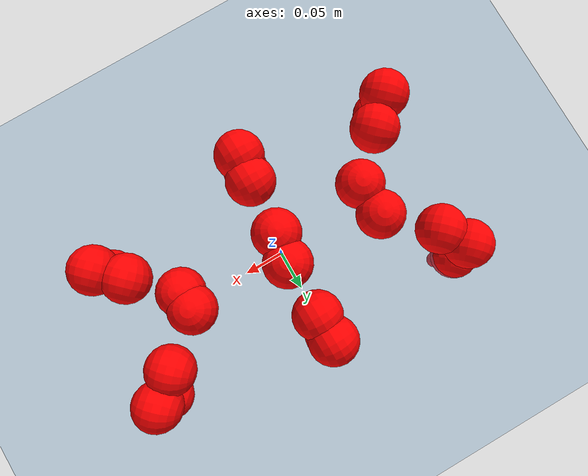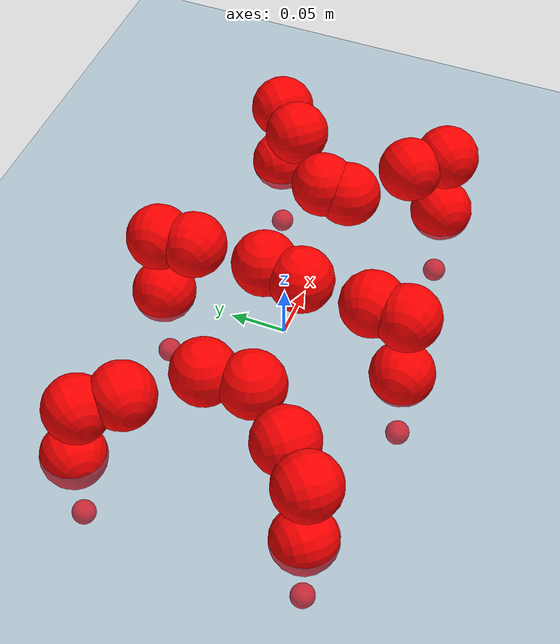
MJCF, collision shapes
<mujoco model="Golem">
  <compiler angle="radian" assetdir="assets" balanceinertia="true" inertiafromgeom="false"/>

  <option timestep="0.005" density="1.2" viscosity="2e-05"/>

  <size nkey="1"/>

  <visual>
    <quality shadowsize="8192"/>
    <map shadowclip="0.5"/>
  </visual>

  <default>
    <default class="/">
      <joint armature="0.01" damping="0.01" frictionloss="0.01"/>
      <geom contype="0" conaffinity="0" group="1" solref="-1000 -80"/>
      <site size="0.01 0.005 0.005" group="5"/>
      <general forcelimited="true" biastype="affine" gainprm="25" biasprm="0 -25 -0.5"/>
      <default class="visual">
        <geom type="mesh" group="2"/>
      </default>
      <default class="collision">
        <geom group="3"/>
      </default>
      <default class="foot">
        <geom size="0.01 0 0" condim="6" group="4" priority="1" solimp="0.015 1 0.01"/>
      </default>
      <default class="reward_collision_sphere">
        <geom group="5" rgba="1 0 0 1"/>
      </default>
    </default>
  </default>

  <asset>
    <texture type="skybox" colorspace="auto" name="//unnamed_texture_0" builtin="gradient" rgb1="0.95 0.95 0.95" rgb2="0.95 0.95 0.95" width="100" height="600"/>
    <texture type="2d" colorspace="auto" name="texplane" builtin="checker" rgb1="0.345 0.575 0.748" rgb2="0.345 0.575 0.748" markrgb="1 1 1" width="512" height="512"/>
    <material name="MatPlane" class="/" texture="texplane" texuniform="true" texrepeat="2 2" specular="0.9"/>
    <mesh name="body" class="/" file="body.stl" scale="0.001 0.001 0.001"/>
    <mesh name="coxa" class="/" file="coxa.stl" scale="0.001 0.001 0.001"/>
    <mesh name="femur" class="/" file="femur.stl" scale="0.001 0.001 0.001"/>
    <mesh name="tibia" class="/" file="tibia.stl" scale="0.001 0.001 0.001"/>
    <mesh name="tarsus" class="/" file="tarsus.stl" scale="0.001 0.001 0.001"/>
  </asset>

  <worldbody>
    <geom name="floor" class="/" size="100 100 0.125" type="plane" group="0" material="MatPlane"/>
    <light name="toplight_shadow" class="/" pos="0 0 5" dir="0.0990148 0.0990148 -0.990148" type="directional" ambient="0.04 0.04 0.04" diffuse="0.55 0.55 0.55" specular="0.12 0.12 0.12"/>
    <light name="toplight_fill" class="/" pos="0 0 5" dir="0.0990148 0.0990148 -0.990148" type="directional" castshadow="false" ambient="0.04 0.04 0.04" diffuse="0.3 0.3 0.3" specular="0.08 0.08 0.08"/>
    <body name="trunk" pos="-0.000832035 0.000814879 0.00242659" quat="0.999996 -0.00279699 -1.72225e-05 0.000371411">
      <inertial pos="0.00259358 -0.00135908 -0.00397522" quat="0.999999 0.00110419 -0.000581209 0.000194224" mass="1.35005" diaginertia="0.00267206 5.66952e-05 0.014335"/>
      <joint name="//unnamed_joint_0" type="free"/>
      <geom name="//unnamed_geom_1" class="/" pos="0 0 0.0682813" quat="1 0 0 0" type="mesh" rgba="0.9 0.9 0.9 1" mesh="body"/>
      <site name="imu" class="/" pos="0.0749864 0.000752889 0.104084" size="0.00727629"/>
      <camera name="track" class="/" pos="0 -0.707524 0" quat="0.707107 0.707107 0 0" mode="trackcom"/>
      <camera name="ego_camera" class="/" pos="0.0990899 0 0.10669" quat="-0.5 -0.5 0.5 0.5"/>
      <body name="coxa_RR" pos="-0.132631 -0.0358538 0.0618499" quat="0.38208 -0.000212951 0.00265611 -0.924126">
        <inertial pos="6.88076e-05 -0.000379993 -0.00218116" quat="0.999991 0.00356491 -0.00166133 0.00157485" mass="0.0723277" diaginertia="0.00251857 5.3778e-05 0.0132852"/>
        <joint name="coxa_joint_RR" class="/" pos="0 0 0" axis="0.0143935 0.000290391 -0.999896" range="-3.09343 3.22084" armature="0.00726815" damping="0.000541713" frictionloss="0.00717965"/>
        <geom name="//unnamed_geom_2" class="/" type="mesh" rgba="0.2 0.2 0.2 1" mesh="coxa"/>
        <geom name="//unnamed_geom_3" class="reward_collision_sphere" size="0.0291052" pos="-0.0228669 0 0"/>
        <body name="femur_RR" pos="0.0438833 3.6149e-05 0.00490184" quat="0.50037 -0.500408 0.49909 0.50013">
          <inertial pos="-0.000907984 -2.05188e-05 -0.00236366" quat="0.999966 -0.00553254 -0.00412627 0.00457407" mass="0.0773528" diaginertia="0.00257109 5.50484e-05 0.0133225"/>
          <joint name="femur_joint_RR" class="/" pos="0 0 0" axis="-0.00129277 0.00336167 -0.999994" range="-3.21987 3.15615" armature="0.00859556" damping="0.00690125" frictionloss="0.00651458"/>
          <geom name="//unnamed_geom_4" class="/" type="mesh" rgba="0.9 0.9 0.9 1" mesh="femur"/>
          <geom name="//unnamed_geom_5" class="reward_collision_sphere" size="0.0291052"/>
          <body name="tibia_RR" pos="0.00291174 -0.0437632 -0.00113069" quat="0.00038222 1 -0.000697251 -0.000227417">
            <inertial pos="-0.00252107 3.80623e-05 0.00107564" quat="0.999961 0.00434162 -0.00693858 -0.00316951" mass="0.0745607" diaginertia="0.0025093 5.59918e-05 0.014344"/>
            <joint name="tibia_joint_RR" class="/" pos="0 0 0" axis="-0.0215137 -0.00348545 0.999762" stiffness="0.00178795" range="-3.22781 3.15892" armature="0.00813095" damping="0.0177397" frictionloss="0.0063785"/>
            <geom name="//unnamed_geom_6" class="/" type="mesh" rgba="0.2 0.2 0.2 1" mesh="tibia"/>
            <geom name="//unnamed_geom_7" class="reward_collision_sphere" size="0.0291052"/>
            <body name="tarsus_RR" pos="0.0699584 0.000216415 0.00150524" quat="1 -4.48214e-05 -0.000757956 0.000394801">
              <inertial pos="0.0486884 -0.000511516 0.00272029" quat="0.500896 0.501374 0.499555 0.498168" mass="0.0746883" diaginertia="0.00259675 5.56369e-05 0.0137711"/>
              <joint name="tarsus_joint_RR" class="/" pos="0 0 0" axis="-0.0142163 -0.00268898 0.999895" range="-3.15572 3.09022" armature="0.00634749" damping="0.00382345" frictionloss="0.00819247"/>
              <geom name="//unnamed_geom_8" class="/" type="mesh" rgba="0.9 0.9 0.9 1" mesh="tarsus"/>
              <geom name="foot_1" class="foot" size="0.00768289" pos="0.0853697 0 0" quat="0 -0.707107 0 0.707107"/>
              <geom name="//unnamed_geom_10" class="reward_collision_sphere" size="0.0291052"/>
              <geom name="//unnamed_geom_11" class="reward_collision_sphere" size="0.0109144" pos="0.0819397 0 0"/>
              <site name="foot_1" class="foot" pos="0.0853697 0 0" quat="0 -0.707107 0 0.707107" size="0.00727629"/>
            </body>
          </body>
        </body>
      </body>
      <body name="coxa_RM" pos="-0.00376516 -0.0410237 0.0741845" quat="0.70706 -0.00081922 -0.00179132 -0.707151">
        <inertial pos="0.000918016 0.00339515 0.00163505" quat="0.999962 0.00250676 -0.00156445 -0.00826081" mass="0.0780272" diaginertia="0.00264283 5.31021e-05 0.0133634"/>
        <joint name="coxa_joint_RM" class="/" pos="0 0 0" axis="-0.0140295 -0.00987811 -0.999853" range="-3.1251 3.08469" armature="0.005497" damping="0.0273845" frictionloss="0.00780653"/>
        <geom name="//unnamed_geom_12" class="/" type="mesh" rgba="0.2 0.2 0.2 1" mesh="coxa"/>
        <geom name="//unnamed_geom_13" class="reward_collision_sphere" size="0.0291052" pos="-0.0228669 0 0"/>
        <body name="femur_RM" pos="0.0427141 -0.00449265 -1.89625e-05" quat="0.500011 -0.4999 0.500096 0.499993">
          <inertial pos="-0.00067316 0.00155402 0.00152514" quat="0.999926 0.000624283 -0.00734808 0.00968495" mass="0.0763254" diaginertia="0.00266577 5.33322e-05 0.0133182"/>
          <joint name="femur_joint_RM" class="/" pos="0 0 0" axis="0.00151825 0.00911287 -0.999957" range="-3.15136 3.1255" armature="0.00670585" damping="0.00298975" frictionloss="0.00688974"/>
          <geom name="//unnamed_geom_14" class="/" type="mesh" rgba="0.9 0.9 0.9 1" mesh="femur"/>
          <geom name="//unnamed_geom_15" class="reward_collision_sphere" size="0.0291052"/>
          <body name="tibia_RM" pos="0.000463048 -0.0324093 -0.00377031" quat="-0.000816215 0.999999 -0.00085777 0.00028596">
            <inertial pos="0.00155807 -0.00269198 0.00356837" quat="0.999884 -0.0041887 0.00330429 0.0142778" mass="0.0762289" diaginertia="0.00246249 5.66831e-05 0.0134209"/>
            <joint name="tibia_joint_RM" class="/" pos="0 0 0" axis="-0.00394486 -0.00350485 0.999986" stiffness="0.000451878" range="-3.08959 3.11462" armature="0.00600708" damping="0.00863972" frictionloss="0.00537702"/>
            <geom name="//unnamed_geom_16" class="/" type="mesh" rgba="0.2 0.2 0.2 1" mesh="tibia"/>
            <geom name="//unnamed_geom_17" class="reward_collision_sphere" size="0.0291052"/>
            <body name="tarsus_RM" pos="0.0689081 -0.000627272 0.00211742" quat="1 0.000107895 -2.99901e-05 -7.7904e-06">
              <inertial pos="0.0448924 -0.00123458 -0.00128622" quat="0.500949 0.500531 0.495384 0.503105" mass="0.0797034" diaginertia="0.0026032 5.64311e-05 0.0140155"/>
              <joint name="tarsus_joint_RM" class="/" pos="0 0 0" axis="-0.00188983 -0.00113313 0.999998" range="-3.22871 3.15061" armature="0.0051546" damping="0.000744308" frictionloss="0.00771162"/>
              <geom name="//unnamed_geom_18" class="/" type="mesh" rgba="0.9 0.9 0.9 1" mesh="tarsus"/>
              <geom name="foot_2" class="foot" size="0.00615343" pos="0.0853697 0 0" quat="0 -0.707107 0 0.707107"/>
              <geom name="//unnamed_geom_20" class="reward_collision_sphere" size="0.0291052"/>
              <geom name="//unnamed_geom_21" class="reward_collision_sphere" size="0.0109144" pos="0.0819397 0 0"/>
              <site name="foot_2" class="foot" pos="0.0853697 0 0" quat="0 -0.707107 0 0.707107" size="0.00727629"/>
            </body>
          </body>
        </body>
      </body>
      <body name="coxa_RF" pos="0.138898 -0.0315901 0.0623384" quat="0.923861 0.000273221 -4.40912e-05 -0.382727">
        <inertial pos="0.00182896 0.00584106 -0.000489023" quat="0.999973 -0.00176015 0.0045786 -0.00541218" mass="0.0741879" diaginertia="0.00250295 5.65545e-05 0.0136565"/>
        <joint name="coxa_joint_RF" class="/" pos="0 0 0" axis="0.000227594 0.000236628 -1" range="-3.16309 3.05612" armature="0.00741415" damping="0.0246427" frictionloss="0.0064403"/>
        <geom name="//unnamed_geom_22" class="/" type="mesh" rgba="0.2 0.2 0.2 1" mesh="coxa"/>
        <geom name="//unnamed_geom_23" class="reward_collision_sphere" size="0.0291052" pos="-0.0228669 0 0"/>
        <body name="femur_RF" pos="0.0393242 0.000230114 0.00763806" quat="0.500325 -0.498636 0.499787 0.501248">
          <inertial pos="0.0016464 0.00159636 -0.0040451" quat="0.999747 -0.00657645 0.00556013 0.0207702" mass="0.0751203" diaginertia="0.00260521 5.88971e-05 0.0134611"/>
          <joint name="femur_joint_RF" class="/" pos="0 0 0" axis="0.00293984 -0.0082483 -0.999962" stiffness="0.00752907" range="-3.16372 3.13873" armature="0.00800646" damping="0.00392037" frictionloss="0.0086971"/>
          <geom name="//unnamed_geom_24" class="/" type="mesh" rgba="0.9 0.9 0.9 1" mesh="femur"/>
          <geom name="//unnamed_geom_25" class="reward_collision_sphere" size="0.0291052"/>
          <body name="tibia_RF" pos="-0.0012853 -0.0376424 0.000357955" quat="-7.89668e-05 1 -0.000643319 -0.000480965">
            <inertial pos="-0.000357354 0.000204882 -0.00148272" quat="0.999986 -0.000883112 -0.00365553 0.00376294" mass="0.0761867" diaginertia="0.00254032 5.39929e-05 0.0130183"/>
            <joint name="tibia_joint_RF" class="/" pos="0 0 0" axis="-0.00264409 -0.0166238 0.999858" range="-3.1899 3.14329" armature="0.00660369" damping="0.0177358" frictionloss="0.00731014"/>
            <geom name="//unnamed_geom_26" class="/" type="mesh" rgba="0.2 0.2 0.2 1" mesh="tibia"/>
            <geom name="//unnamed_geom_27" class="reward_collision_sphere" size="0.0291052"/>
            <body name="tarsus_RF" pos="0.0661796 -0.000192316 -5.65422e-05" quat="0.999998 0.00155092 3.57255e-05 -0.00112311">
              <inertial pos="0.0499178 9.0104e-05 -0.00546781" quat="0.500971 0.499353 0.505901 0.493698" mass="0.0811362" diaginertia="0.00257562 5.65864e-05 0.0148131"/>
              <joint name="tarsus_joint_RF" class="/" pos="0 0 0" axis="0.0181056 0.0136943 0.999742" range="-3.23037 3.18641" armature="0.00714339" damping="0.00826603" frictionloss="0.00689894"/>
              <geom name="//unnamed_geom_28" class="/" type="mesh" rgba="0.9 0.9 0.9 1" mesh="tarsus"/>
              <geom name="foot_3" class="foot" size="0.00783597" pos="0.0853697 0 0" quat="0 -0.707107 0 0.707107"/>
              <geom name="//unnamed_geom_30" class="reward_collision_sphere" size="0.0291052"/>
              <geom name="//unnamed_geom_31" class="reward_collision_sphere" size="0.0109144" pos="0.0819397 0 0"/>
              <site name="foot_3" class="foot" pos="0.0853697 0 0" quat="0 -0.707107 0 0.707107" size="0.00727629"/>
            </body>
          </body>
        </body>
      </body>
      <body name="coxa_LR" pos="-0.134865 0.0383403 0.061774" quat="0.382117 -0.00156029 0.00115002 0.924112">
        <inertial pos="-0.00358885 -2.40526e-05 0.000569367" quat="0.999947 -0.00532905 -0.00167545 -0.00867279" mass="0.0773238" diaginertia="0.00266227 5.54553e-05 0.0138369"/>
        <joint name="coxa_joint_LR" class="/" pos="0 0 0" axis="-0.00539185 -0.0219086 -0.999745" range="-3.19005 3.17763" armature="0.00668089" damping="0.0351187" frictionloss="0.00727816"/>
        <geom name="//unnamed_geom_32" class="/" type="mesh" rgba="0.2 0.2 0.2 1" mesh="coxa"/>
        <geom name="//unnamed_geom_33" class="reward_collision_sphere" size="0.0291052" pos="-0.0228669 0 0"/>
        <body name="femur_LR" pos="0.0470576 8.67504e-05 0.00390484" quat="0.499297 -0.499354 0.501539 0.499807">
          <inertial pos="0.00187408 -0.00226889 0.0013105" quat="1 -0.00010214 0.00019899 -0.000229049" mass="0.0729077" diaginertia="0.00250706 5.45244e-05 0.0136364"/>
          <joint name="femur_joint_LR" class="/" pos="0 0 0" axis="-7.00915e-05 9.11475e-05 1" stiffness="0.0102913" range="-3.12561 3.02393" armature="0.00660121" damping="0.0158289" frictionloss="0.00536281"/>
          <geom name="//unnamed_geom_34" class="/" type="mesh" rgba="0.9 0.9 0.9 1" mesh="femur"/>
          <geom name="//unnamed_geom_35" class="reward_collision_sphere" size="0.0291052"/>
          <body name="tibia_LR" pos="0.00684262 -0.0364781 -0.00721013" quat="0.000246674 0.999999 0.000109221 0.0013415">
            <inertial pos="0.00244759 -0.00303084 0.00331981" quat="0.999932 0.0097419 0.00544312 0.00328605" mass="0.0743255" diaginertia="0.0024842 5.27198e-05 0.0133699"/>
            <joint name="tibia_joint_LR" class="/" pos="0 0 0" axis="-0.0066829 0.00230576 -0.999975" range="-3.09549 3.20701" armature="0.00894505" damping="0" frictionloss="0.00714005"/>
            <geom name="//unnamed_geom_36" class="/" type="mesh" rgba="0.2 0.2 0.2 1" mesh="tibia"/>
            <geom name="//unnamed_geom_37" class="reward_collision_sphere" size="0.0291052"/>
            <body name="tarsus_LR" pos="0.066188 0.00711565 0.00775297" quat="0.999999 -0.000863908 -1.47829e-05 0.000514084">
              <inertial pos="0.0478145 -0.000271071 -0.0017152" quat="0.501106 0.501345 0.501245 0.496285" mass="0.078652" diaginertia="0.00264418 5.60446e-05 0.0143232"/>
              <joint name="tarsus_joint_LR" class="/" pos="0 0 0" axis="-0.00410505 -0.0104968 -0.999936" stiffness="0.0022342" range="-3.22144 3.154" armature="0.00734671" damping="0.036679" frictionloss="0.00815568"/>
              <geom name="//unnamed_geom_38" class="/" type="mesh" rgba="0.9 0.9 0.9 1" mesh="tarsus"/>
              <geom name="foot_4" class="foot" size="0.00819048" pos="0.0853697 0 0" quat="0.707107 0 -0.707107 0"/>
              <geom name="//unnamed_geom_40" class="reward_collision_sphere" size="0.0291052"/>
              <geom name="//unnamed_geom_41" class="reward_collision_sphere" size="0.0109144" pos="0.0819397 0 0"/>
              <site name="foot_4" class="foot" pos="0.0853697 0 0" quat="0.707107 0 -0.707107 0" size="0.00727629"/>
            </body>
          </body>
        </body>
      </body>
      <body name="coxa_LM" pos="0.00233513 0.0404724 0.0744774" quat="0.706737 -0.0017198 0.00226954 0.707471">
        <inertial pos="-0.0013787 0.000195367 -0.000349925" quat="0.999942 -0.00290641 -0.0027529 -0.00995127" mass="0.0697729" diaginertia="0.00223173 5.11257e-05 0.0129802"/>
        <joint name="coxa_joint_LM" class="/" pos="0 0 0" axis="0.00241889 -0.0019958 -0.999995" range="-3.0878 3.08914" armature="0.00774926" damping="0.01056" frictionloss="0.0064737"/>
        <geom name="//unnamed_geom_42" class="/" type="mesh" rgba="0.2 0.2 0.2 1" mesh="coxa"/>
        <geom name="//unnamed_geom_43" class="reward_collision_sphere" size="0.0291052" pos="-0.0228669 0 0"/>
        <body name="femur_LM" pos="0.0436337 -0.000830624 -0.00219251" quat="0.50002 -0.49997 0.500014 0.499996">
          <inertial pos="0.000657791 0.0015152 0.00105418" quat="0.999999 -0.000500883 -0.000932319 -0.000550109" mass="0.0833365" diaginertia="0.00265654 5.92364e-05 0.0148407"/>
          <joint name="femur_joint_LM" class="/" pos="0 0 0" axis="-0.00470166 -0.000325345 0.999989" stiffness="0.00632686" range="-3.09109 3.10107" armature="0.00705489" damping="0.000408148" frictionloss="0.00705086"/>
          <geom name="//unnamed_geom_44" class="/" type="mesh" rgba="0.9 0.9 0.9 1" mesh="femur"/>
          <geom name="//unnamed_geom_45" class="reward_collision_sphere" size="0.0291052"/>
          <body name="tibia_LM" pos="0.000862522 -0.0328463 0.00129806" quat="-8.70408e-05 0.999999 -0.000369431 -0.00107873">
            <inertial pos="0.00465748 -0.00593405 0.00196306" quat="1 0.0001017 0.000665379 -0.000496745" mass="0.0772979" diaginertia="0.00274013 5.74443e-05 0.0146077"/>
            <joint name="tibia_joint_LM" class="/" pos="0 0 0" axis="-0.00182984 -0.00358274 -0.999992" stiffness="0.0115493" range="-3.17212 3.1311" armature="0.00741085" damping="0.00358358" frictionloss="0.00725446"/>
            <geom name="//unnamed_geom_46" class="/" type="mesh" rgba="0.2 0.2 0.2 1" mesh="tibia"/>
            <geom name="//unnamed_geom_47" class="reward_collision_sphere" size="0.0291052"/>
            <body name="tarsus_LM" pos="0.0671492 -0.000540548 -0.000130953" quat="1 0.000220869 -0.000233861 -0.000739019">
              <inertial pos="0.044676 -0.00142068 0.000313119" quat="0.492725 0.49831 0.501183 0.507666" mass="0.0800271" diaginertia="0.00271845 5.70444e-05 0.0138062"/>
              <joint name="tarsus_joint_LM" class="/" pos="0 0 0" axis="-0.0117929 -0.00150469 -0.999929" range="-3.09552 3.16849" armature="0.00722987" damping="0" frictionloss="0.00818196"/>
              <geom name="//unnamed_geom_48" class="/" type="mesh" rgba="0.9 0.9 0.9 1" mesh="tarsus"/>
              <geom name="foot_5" class="foot" size="0.00800088" pos="0.0853697 0 0" quat="0.707107 0 -0.707107 0"/>
              <geom name="//unnamed_geom_50" class="reward_collision_sphere" size="0.0291052"/>
              <geom name="//unnamed_geom_51" class="reward_collision_sphere" size="0.0109144" pos="0.0819397 0 0"/>
              <site name="foot_5" class="foot" pos="0.0853697 0 0" quat="0.707107 0 -0.707107 0" size="0.00727629"/>
            </body>
          </body>
        </body>
      </body>
      <body name="coxa_LF" pos="0.136066 0.0239809 0.0685837" quat="0.923981 -0.000137642 2.08616e-05 0.382438">
        <inertial pos="-0.00270263 0.00145121 -0.00157289" quat="0.999927 -0.00274572 0.00996268 -0.00628342" mass="0.0793243" diaginertia="0.00264599 5.89238e-05 0.0143113"/>
        <joint name="coxa_joint_LF" class="/" pos="0 0 0" axis="-0.00027144 -0.00345977 -0.999994" stiffness="0.00446521" range="-3.1172 3.10315" armature="0.00705585" damping="0.00983849" frictionloss="0.00744099"/>
        <geom name="//unnamed_geom_52" class="/" type="mesh" rgba="0.2 0.2 0.2 1" mesh="coxa"/>
        <geom name="//unnamed_geom_53" class="reward_collision_sphere" size="0.0291052" pos="-0.0228669 0 0"/>
        <body name="femur_LF" pos="0.0468677 -0.00450345 0.00522218" quat="0.500099 -0.499889 0.499856 0.500156">
          <inertial pos="1.10273e-05 0.00112547 -0.00266035" quat="0.999632 -0.00226054 -0.0170246 -0.0210124" mass="0.0774678" diaginertia="0.00251939 5.84802e-05 0.0139662"/>
          <joint name="femur_joint_LF" class="/" pos="0 0 0" axis="-0.000384649 0.000767904 1" range="-3.11679 3.12007" armature="0.00659321" damping="0" frictionloss="0.00939081"/>
          <geom name="//unnamed_geom_54" class="/" type="mesh" rgba="0.9 0.9 0.9 1" mesh="femur"/>
          <geom name="//unnamed_geom_55" class="reward_collision_sphere" size="0.0291052"/>
          <body name="tibia_LF" pos="0.00152485 -0.0412814 -0.0032895" quat="-5.2698e-05 1 8.50142e-05 -3.64278e-05">
            <inertial pos="0.00156419 -0.000890272 0.00134071" quat="0.999996 0.000491744 -0.00187651 -0.00217354" mass="0.0767374" diaginertia="0.00251707 5.53216e-05 0.0138373"/>
            <joint name="tibia_joint_LF" class="/" pos="0 0 0" axis="0.00129453 -0.000599154 -0.999999" range="-3.03728 3.16636" armature="0.00741931" damping="0" frictionloss="0.00761608"/>
            <geom name="//unnamed_geom_56" class="/" type="mesh" rgba="0.2 0.2 0.2 1" mesh="tibia"/>
            <geom name="//unnamed_geom_57" class="reward_collision_sphere" size="0.0291052"/>
            <body name="tarsus_LF" pos="0.0687469 0.00177918 0.000747284" quat="1 0.000176585 -0.000281057 -0.000135764">
              <inertial pos="0.045109 -0.000667309 -0.0048905" quat="0.500131 0.502589 0.500497 0.496766" mass="0.0731734" diaginertia="0.0025889 5.42065e-05 0.0139109"/>
              <joint name="tarsus_joint_LF" class="/" pos="0 0 0" axis="0.00673064 0.0065448 -0.999956" stiffness="0.0212595" range="-3.14474 3.13524" armature="0.00712176" damping="0.0404835" frictionloss="0.00812477"/>
              <geom name="//unnamed_geom_58" class="/" type="mesh" rgba="0.9 0.9 0.9 1" mesh="tarsus"/>
              <geom name="foot_6" class="foot" size="0.00730406" pos="0.0853697 0 0" quat="0.707107 0 -0.707107 0"/>
              <geom name="//unnamed_geom_60" class="reward_collision_sphere" size="0.0291052"/>
              <geom name="//unnamed_geom_61" class="reward_collision_sphere" size="0.0109144" pos="0.0819397 0 0"/>
              <site name="foot_6" class="foot" pos="0.0853697 0 0" quat="0.707107 0 -0.707107 0" size="0.00727629"/>
            </body>
          </body>
        </body>
      </body>
    </body>
  </worldbody>

  <contact>
    <pair class="/" geom1="floor" geom2="foot_1" name="//unnamed_contact_0"/>
    <pair class="/" geom1="floor" geom2="foot_2" name="//unnamed_contact_1"/>
    <pair class="/" geom1="floor" geom2="foot_3" name="//unnamed_contact_2"/>
    <pair class="/" geom1="floor" geom2="foot_4" name="//unnamed_contact_3"/>
    <pair class="/" geom1="floor" geom2="foot_5" name="//unnamed_contact_4"/>
    <pair class="/" geom1="floor" geom2="foot_6" name="//unnamed_contact_5"/>
  </contact>

  <actuator>
    <general name="coxa_joint_RR" class="/" joint="coxa_joint_RR" forcerange="-5.01752 5.01752" gainprm="20.507" biasprm="0 -20.507 -0.409316"/>
    <general name="femur_joint_RR" class="/" joint="femur_joint_RR" forcerange="-5.55467 5.55467" gainprm="20.507" biasprm="0 -20.507 -0.409316"/>
    <general name="tibia_joint_RR" class="/" joint="tibia_joint_RR" forcerange="-4.82955 4.82955" gainprm="20.507" biasprm="0 -20.507 -0.409316"/>
    <general name="tarsus_joint_RR" class="/" joint="tarsus_joint_RR" forcerange="-5.81428 5.81428" gainprm="20.507" biasprm="0 -20.507 -0.409316"/>
    <general name="coxa_joint_RM" class="/" joint="coxa_joint_RM" forcerange="-4.98871 4.98871" gainprm="20.507" biasprm="0 -20.507 -0.409316"/>
    <general name="femur_joint_RM" class="/" joint="femur_joint_RM" forcerange="-4.76788 4.76788" gainprm="20.507" biasprm="0 -20.507 -0.409316"/>
    <general name="tibia_joint_RM" class="/" joint="tibia_joint_RM" forcerange="-5.10026 5.10026" gainprm="20.507" biasprm="0 -20.507 -0.409316"/>
    <general name="tarsus_joint_RM" class="/" joint="tarsus_joint_RM" forcerange="-4.28581 4.28581" gainprm="20.507" biasprm="0 -20.507 -0.409316"/>
    <general name="coxa_joint_RF" class="/" joint="coxa_joint_RF" forcerange="-4.55157 4.55157" gainprm="20.507" biasprm="0 -20.507 -0.409316"/>
    <general name="femur_joint_RF" class="/" joint="femur_joint_RF" forcerange="-6.08505 6.08505" gainprm="20.507" biasprm="0 -20.507 -0.409316"/>
    <general name="tibia_joint_RF" class="/" joint="tibia_joint_RF" forcerange="-5.04451 5.04451" gainprm="20.507" biasprm="0 -20.507 -0.409316"/>
    <general name="tarsus_joint_RF" class="/" joint="tarsus_joint_RF" forcerange="-5.5735 5.5735" gainprm="20.507" biasprm="0 -20.507 -0.409316"/>
    <general name="coxa_joint_LR" class="/" joint="coxa_joint_LR" forcerange="-5.44626 5.44626" gainprm="20.507" biasprm="0 -20.507 -0.409316"/>
    <general name="femur_joint_LR" class="/" joint="femur_joint_LR" forcerange="-5.5425 5.5425" gainprm="20.507" biasprm="0 -20.507 -0.409316"/>
    <general name="tibia_joint_LR" class="/" joint="tibia_joint_LR" forcerange="-5.07149 5.07149" gainprm="20.507" biasprm="0 -20.507 -0.409316"/>
    <general name="tarsus_joint_LR" class="/" joint="tarsus_joint_LR" forcerange="-4.85466 4.85466" gainprm="20.507" biasprm="0 -20.507 -0.409316"/>
    <general name="coxa_joint_LM" class="/" joint="coxa_joint_LM" forcerange="-5.22826 5.22826" gainprm="20.507" biasprm="0 -20.507 -0.409316"/>
    <general name="femur_joint_LM" class="/" joint="femur_joint_LM" forcerange="-5.25425 5.25425" gainprm="20.507" biasprm="0 -20.507 -0.409316"/>
    <general name="tibia_joint_LM" class="/" joint="tibia_joint_LM" forcerange="-6.32084 6.32084" gainprm="20.507" biasprm="0 -20.507 -0.409316"/>
    <general name="tarsus_joint_LM" class="/" joint="tarsus_joint_LM" forcerange="-5.28489 5.28489" gainprm="20.507" biasprm="0 -20.507 -0.409316"/>
    <general name="coxa_joint_LF" class="/" joint="coxa_joint_LF" forcerange="-4.74846 4.74846" gainprm="20.507" biasprm="0 -20.507 -0.409316"/>
    <general name="femur_joint_LF" class="/" joint="femur_joint_LF" forcerange="-4.68349 4.68349" gainprm="20.507" biasprm="0 -20.507 -0.409316"/>
    <general name="tibia_joint_LF" class="/" joint="tibia_joint_LF" forcerange="-5.32499 5.32499" gainprm="20.507" biasprm="0 -20.507 -0.409316"/>
    <general name="tarsus_joint_LF" class="/" joint="tarsus_joint_LF" forcerange="-4.85528 4.85528" gainprm="20.507" biasprm="0 -20.507 -0.409316"/>
  </actuator>

  <sensor>
    <gyro site="imu" name="imu_angular_velocity"/>
    <velocimeter site="imu" name="imu_linear_velocity"/>
    <framelinvel objtype="site" objname="foot_1" name="foot_1_global_linear_velocity"/>
    <framelinvel objtype="site" objname="foot_2" name="foot_2_global_linear_velocity"/>
    <framelinvel objtype="site" objname="foot_3" name="foot_3_global_linear_velocity"/>
    <framelinvel objtype="site" objname="foot_4" name="foot_4_global_linear_velocity"/>
    <framelinvel objtype="site" objname="foot_5" name="foot_5_global_linear_velocity"/>
    <framelinvel objtype="site" objname="foot_6" name="foot_6_global_linear_velocity"/>
  </sensor>

  <keyframe>
    <key name="home" qpos="0 0 0.1457 1 0 0 0 0 0 0 0 0 0 0 0 0 0 0 0 0 0 0 0 0 0 0 0 0 0 0 0"/>
  </keyframe>
</mujoco>
